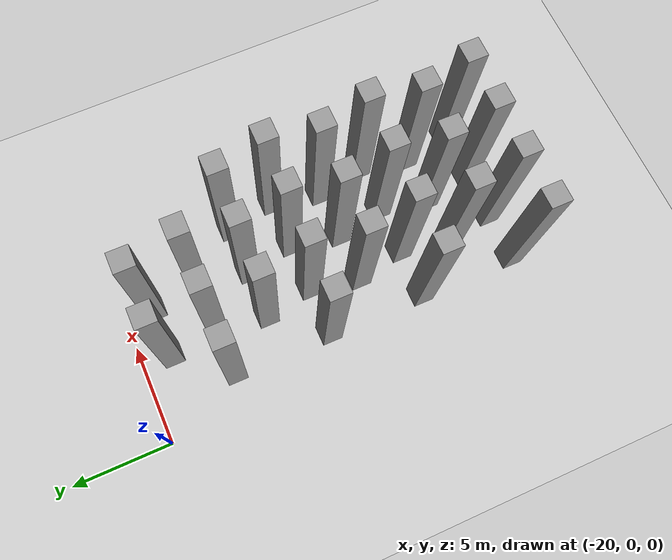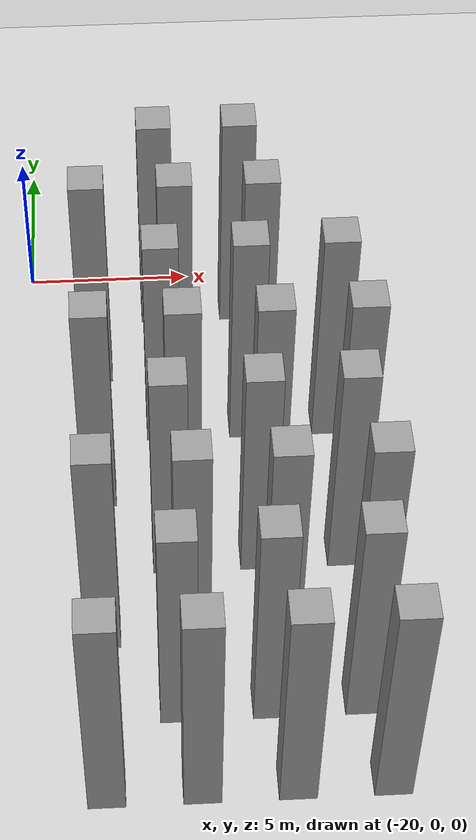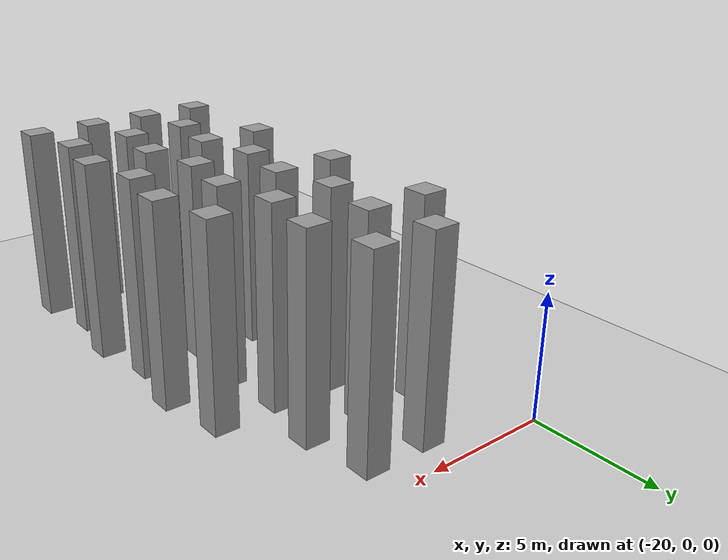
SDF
<sdf version="1.7">
 <world name="default">
  <model name="ground_plane">
   <static>1</static>
   <link name="link">
    <collision name="collision">
     <geometry><plane><normal>0 0 1</normal><size>100 100</size></plane></geometry>
     <surface>
      <contact><collide_bitmask>65535</collide_bitmask></contact>
      <friction><ode><mu>100</mu><mu2>50</mu2></ode></friction>
     </surface>
    </collision>
    <visual name="visual">
     <cast_shadows>0</cast_shadows>
     <geometry><plane><normal>0 0 1</normal><size>100 100</size></plane></geometry>
     <material>
      <script><uri>file://media/materials/scripts/gazebo.material</uri><name>Gazebo/Grey</name></script>
     </material>
    </visual>
   </link>
  </model>
  <model name="unit_box_static1">
   <link name="link">
    <inertial>
     <mass>1</mass>
     <inertia>
      <ixx>0.166667</ixx>
      <ixy>0</ixy>
      <ixz>0</ixz>
      <iyy>0.166667</iyy>
      <iyz>0</iyz>
      <izz>0.166667</izz>
     </inertia>
    </inertial>
    <visual name="visual">
     <geometry><box><size>1 1 8</size></box></geometry>
     <material>
      <script><name>Gazebo/Grey</name><uri>file://media/materials/scripts/gazebo.material</uri></script>
      <shader type="pixel"/>
     </material>
    </visual>
    <collision name="collision">
     <geometry><box><size>1 1 8</size></box></geometry>
     <surface>
      <friction>
       <ode><mu>1</mu><mu2>1</mu2><fdir1>0 0 0</fdir1><slip1>0</slip1><slip2>0</slip2></ode>
       <torsional>
        <coefficient>1</coefficient>
        <patch_radius>0</patch_radius>
        <surface_radius>0</surface_radius>
        <use_patch_radius>1</use_patch_radius>
        <ode><slip>0</slip></ode>
       </torsional>
      </friction>
      <bounce><restitution_coefficient>0</restitution_coefficient><threshold>1e+06</threshold></bounce>
      <contact>
       <collide_without_contact>0</collide_without_contact>
       <collide_without_contact_bitmask>1</collide_without_contact_bitmask>
       <collide_bitmask>1</collide_bitmask>
       <ode>
        <soft_cfm>0</soft_cfm>
        <soft_erp>0.2</soft_erp>
        <kp>1e+13</kp>
        <kd>1</kd>
        <max_vel>0.01</max_vel>
        <min_depth>0</min_depth>
       </ode>
       <bullet>
        <split_impulse>1</split_impulse>
        <split_impulse_penetration_threshold>-0.01</split_impulse_penetration_threshold>
        <soft_cfm>0</soft_cfm>
        <soft_erp>0.2</soft_erp>
        <kp>1e+13</kp>
        <kd>1</kd>
       </bullet>
      </contact>
     </surface>
    </collision>
   </link>
   <static>1</static>
   <pose>-18 -19 4 0 -0 0</pose>
  </model>
  <model name="unit_box_static2">
   <link name="link">
    <inertial>
     <mass>1</mass>
     <inertia>
      <ixx>0.166667</ixx>
      <ixy>0</ixy>
      <ixz>0</ixz>
      <iyy>0.166667</iyy>
      <iyz>0</iyz>
      <izz>0.166667</izz>
     </inertia>
    </inertial>
    <visual name="visual">
     <geometry><box><size>1 1 8</size></box></geometry>
     <material>
      <script><name>Gazebo/Grey</name><uri>file://media/materials/scripts/gazebo.material</uri></script>
      <shader type="pixel"/>
     </material>
    </visual>
    <collision name="collision">
     <geometry><box><size>1 1 8</size></box></geometry>
     <surface>
      <friction>
       <ode><mu>1</mu><mu2>1</mu2><fdir1>0 0 0</fdir1><slip1>0</slip1><slip2>0</slip2></ode>
       <torsional>
        <coefficient>1</coefficient>
        <patch_radius>0</patch_radius>
        <surface_radius>0</surface_radius>
        <use_patch_radius>1</use_patch_radius>
        <ode><slip>0</slip></ode>
       </torsional>
      </friction>
      <bounce><restitution_coefficient>0</restitution_coefficient><threshold>1e+06</threshold></bounce>
      <contact>
       <collide_without_contact>0</collide_without_contact>
       <collide_without_contact_bitmask>1</collide_without_contact_bitmask>
       <collide_bitmask>1</collide_bitmask>
       <ode>
        <soft_cfm>0</soft_cfm>
        <soft_erp>0.2</soft_erp>
        <kp>1e+13</kp>
        <kd>1</kd>
        <max_vel>0.01</max_vel>
        <min_depth>0</min_depth>
       </ode>
       <bullet>
        <split_impulse>1</split_impulse>
        <split_impulse_penetration_threshold>-0.01</split_impulse_penetration_threshold>
        <soft_cfm>0</soft_cfm>
        <soft_erp>0.2</soft_erp>
        <kp>1e+13</kp>
        <kd>1</kd>
       </bullet>
      </contact>
     </surface>
    </collision>
   </link>
   <static>1</static>
   <pose>-15.5 -19 4 0 -0 0</pose>
  </model>
  <model name="unit_box_static3">
   <link name="link">
    <inertial>
     <mass>1</mass>
     <inertia>
      <ixx>0.166667</ixx>
      <ixy>0</ixy>
      <ixz>0</ixz>
      <iyy>0.166667</iyy>
      <iyz>0</iyz>
      <izz>0.166667</izz>
     </inertia>
    </inertial>
    <visual name="visual">
     <geometry><box><size>1 1 8</size></box></geometry>
     <material>
      <script><name>Gazebo/Grey</name><uri>file://media/materials/scripts/gazebo.material</uri></script>
      <shader type="pixel"/>
     </material>
    </visual>
    <collision name="collision">
     <geometry><box><size>1 1 8</size></box></geometry>
     <surface>
      <friction>
       <ode><mu>1</mu><mu2>1</mu2><fdir1>0 0 0</fdir1><slip1>0</slip1><slip2>0</slip2></ode>
       <torsional>
        <coefficient>1</coefficient>
        <patch_radius>0</patch_radius>
        <surface_radius>0</surface_radius>
        <use_patch_radius>1</use_patch_radius>
        <ode><slip>0</slip></ode>
       </torsional>
      </friction>
      <bounce><restitution_coefficient>0</restitution_coefficient><threshold>1e+06</threshold></bounce>
      <contact>
       <collide_without_contact>0</collide_without_contact>
       <collide_without_contact_bitmask>1</collide_without_contact_bitmask>
       <collide_bitmask>1</collide_bitmask>
       <ode>
        <soft_cfm>0</soft_cfm>
        <soft_erp>0.2</soft_erp>
        <kp>1e+13</kp>
        <kd>1</kd>
        <max_vel>0.01</max_vel>
        <min_depth>0</min_depth>
       </ode>
       <bullet>
        <split_impulse>1</split_impulse>
        <split_impulse_penetration_threshold>-0.01</split_impulse_penetration_threshold>
        <soft_cfm>0</soft_cfm>
        <soft_erp>0.2</soft_erp>
        <kp>1e+13</kp>
        <kd>1</kd>
       </bullet>
      </contact>
     </surface>
    </collision>
   </link>
   <static>1</static>
   <pose>-13 -19 4 0 -0 0</pose>
  </model>
  <model name="unit_box_static4">
   <link name="link">
    <inertial>
     <mass>1</mass>
     <inertia>
      <ixx>0.166667</ixx>
      <ixy>0</ixy>
      <ixz>0</ixz>
      <iyy>0.166667</iyy>
      <iyz>0</iyz>
      <izz>0.166667</izz>
     </inertia>
    </inertial>
    <visual name="visual">
     <geometry><box><size>1 1 8</size></box></geometry>
     <material>
      <script><name>Gazebo/Grey</name><uri>file://media/materials/scripts/gazebo.material</uri></script>
      <shader type="pixel"/>
     </material>
    </visual>
    <collision name="collision">
     <geometry><box><size>1 1 8</size></box></geometry>
     <surface>
      <friction>
       <ode><mu>1</mu><mu2>1</mu2><fdir1>0 0 0</fdir1><slip1>0</slip1><slip2>0</slip2></ode>
       <torsional>
        <coefficient>1</coefficient>
        <patch_radius>0</patch_radius>
        <surface_radius>0</surface_radius>
        <use_patch_radius>1</use_patch_radius>
        <ode><slip>0</slip></ode>
       </torsional>
      </friction>
      <bounce><restitution_coefficient>0</restitution_coefficient><threshold>1e+06</threshold></bounce>
      <contact>
       <collide_without_contact>0</collide_without_contact>
       <collide_without_contact_bitmask>1</collide_without_contact_bitmask>
       <collide_bitmask>1</collide_bitmask>
       <ode>
        <soft_cfm>0</soft_cfm>
        <soft_erp>0.2</soft_erp>
        <kp>1e+13</kp>
        <kd>1</kd>
        <max_vel>0.01</max_vel>
        <min_depth>0</min_depth>
       </ode>
       <bullet>
        <split_impulse>1</split_impulse>
        <split_impulse_penetration_threshold>-0.01</split_impulse_penetration_threshold>
        <soft_cfm>0</soft_cfm>
        <soft_erp>0.2</soft_erp>
        <kp>1e+13</kp>
        <kd>1</kd>
       </bullet>
      </contact>
     </surface>
    </collision>
   </link>
   <static>1</static>
   <pose>-10.5 -19 4 0 -0 0</pose>
  </model>
  <model name="unit_box_static16">
   <link name="link">
    <inertial>
     <mass>1</mass>
     <inertia>
      <ixx>0.166667</ixx>
      <ixy>0</ixy>
      <ixz>0</ixz>
      <iyy>0.166667</iyy>
      <iyz>0</iyz>
      <izz>0.166667</izz>
     </inertia>
    </inertial>
    <visual name="visual">
     <geometry><box><size>1 1 8</size></box></geometry>
     <material>
      <script><name>Gazebo/Grey</name><uri>file://media/materials/scripts/gazebo.material</uri></script>
      <shader type="pixel"/>
     </material>
    </visual>
    <collision name="collision">
     <geometry><box><size>1 1 8</size></box></geometry>
     <surface>
      <friction>
       <ode><mu>1</mu><mu2>1</mu2><fdir1>0 0 0</fdir1><slip1>0</slip1><slip2>0</slip2></ode>
       <torsional>
        <coefficient>1</coefficient>
        <patch_radius>0</patch_radius>
        <surface_radius>0</surface_radius>
        <use_patch_radius>1</use_patch_radius>
        <ode><slip>0</slip></ode>
       </torsional>
      </friction>
      <bounce><restitution_coefficient>0</restitution_coefficient><threshold>1e+06</threshold></bounce>
      <contact>
       <collide_without_contact>0</collide_without_contact>
       <collide_without_contact_bitmask>1</collide_without_contact_bitmask>
       <collide_bitmask>1</collide_bitmask>
       <ode>
        <soft_cfm>0</soft_cfm>
        <soft_erp>0.2</soft_erp>
        <kp>1e+13</kp>
        <kd>1</kd>
        <max_vel>0.01</max_vel>
        <min_depth>0</min_depth>
       </ode>
       <bullet>
        <split_impulse>1</split_impulse>
        <split_impulse_penetration_threshold>-0.01</split_impulse_penetration_threshold>
        <soft_cfm>0</soft_cfm>
        <soft_erp>0.2</soft_erp>
        <kp>1e+13</kp>
        <kd>1</kd>
       </bullet>
      </contact>
     </surface>
    </collision>
   </link>
   <static>1</static>
   <pose>-16 -16.5 4 0 -0 0</pose>
  </model>
  <model name="unit_box_static17">
   <link name="link">
    <inertial>
     <mass>1</mass>
     <inertia>
      <ixx>0.166667</ixx>
      <ixy>0</ixy>
      <ixz>0</ixz>
      <iyy>0.166667</iyy>
      <iyz>0</iyz>
      <izz>0.166667</izz>
     </inertia>
    </inertial>
    <visual name="visual">
     <geometry><box><size>1 1 8</size></box></geometry>
     <material>
      <script><name>Gazebo/Grey</name><uri>file://media/materials/scripts/gazebo.material</uri></script>
      <shader type="pixel"/>
     </material>
    </visual>
    <collision name="collision">
     <geometry><box><size>1 1 8</size></box></geometry>
     <surface>
      <friction>
       <ode><mu>1</mu><mu2>1</mu2><fdir1>0 0 0</fdir1><slip1>0</slip1><slip2>0</slip2></ode>
       <torsional>
        <coefficient>1</coefficient>
        <patch_radius>0</patch_radius>
        <surface_radius>0</surface_radius>
        <use_patch_radius>1</use_patch_radius>
        <ode><slip>0</slip></ode>
       </torsional>
      </friction>
      <bounce><restitution_coefficient>0</restitution_coefficient><threshold>1e+06</threshold></bounce>
      <contact>
       <collide_without_contact>0</collide_without_contact>
       <collide_without_contact_bitmask>1</collide_without_contact_bitmask>
       <collide_bitmask>1</collide_bitmask>
       <ode>
        <soft_cfm>0</soft_cfm>
        <soft_erp>0.2</soft_erp>
        <kp>1e+13</kp>
        <kd>1</kd>
        <max_vel>0.01</max_vel>
        <min_depth>0</min_depth>
       </ode>
       <bullet>
        <split_impulse>1</split_impulse>
        <split_impulse_penetration_threshold>-0.01</split_impulse_penetration_threshold>
        <soft_cfm>0</soft_cfm>
        <soft_erp>0.2</soft_erp>
        <kp>1e+13</kp>
        <kd>1</kd>
       </bullet>
      </contact>
     </surface>
    </collision>
   </link>
   <static>1</static>
   <pose>-13.5 -16.5 4 0 -0 0</pose>
  </model>
  <model name="unit_box_static18">
   <link name="link">
    <inertial>
     <mass>1</mass>
     <inertia>
      <ixx>0.166667</ixx>
      <ixy>0</ixy>
      <ixz>0</ixz>
      <iyy>0.166667</iyy>
      <iyz>0</iyz>
      <izz>0.166667</izz>
     </inertia>
    </inertial>
    <visual name="visual">
     <geometry><box><size>1 1 8</size></box></geometry>
     <material>
      <script><name>Gazebo/Grey</name><uri>file://media/materials/scripts/gazebo.material</uri></script>
      <shader type="pixel"/>
     </material>
    </visual>
    <collision name="collision">
     <geometry><box><size>1 1 8</size></box></geometry>
     <surface>
      <friction>
       <ode><mu>1</mu><mu2>1</mu2><fdir1>0 0 0</fdir1><slip1>0</slip1><slip2>0</slip2></ode>
       <torsional>
        <coefficient>1</coefficient>
        <patch_radius>0</patch_radius>
        <surface_radius>0</surface_radius>
        <use_patch_radius>1</use_patch_radius>
        <ode><slip>0</slip></ode>
       </torsional>
      </friction>
      <bounce><restitution_coefficient>0</restitution_coefficient><threshold>1e+06</threshold></bounce>
      <contact>
       <collide_without_contact>0</collide_without_contact>
       <collide_without_contact_bitmask>1</collide_without_contact_bitmask>
       <collide_bitmask>1</collide_bitmask>
       <ode>
        <soft_cfm>0</soft_cfm>
        <soft_erp>0.2</soft_erp>
        <kp>1e+13</kp>
        <kd>1</kd>
        <max_vel>0.01</max_vel>
        <min_depth>0</min_depth>
       </ode>
       <bullet>
        <split_impulse>1</split_impulse>
        <split_impulse_penetration_threshold>-0.01</split_impulse_penetration_threshold>
        <soft_cfm>0</soft_cfm>
        <soft_erp>0.2</soft_erp>
        <kp>1e+13</kp>
        <kd>1</kd>
       </bullet>
      </contact>
     </surface>
    </collision>
   </link>
   <static>1</static>
   <pose>-11 -16.5 4 0 -0 0</pose>
  </model>
  <model name="unit_box_static30">
   <link name="link">
    <inertial>
     <mass>1</mass>
     <inertia>
      <ixx>0.166667</ixx>
      <ixy>0</ixy>
      <ixz>0</ixz>
      <iyy>0.166667</iyy>
      <iyz>0</iyz>
      <izz>0.166667</izz>
     </inertia>
    </inertial>
    <visual name="visual">
     <geometry><box><size>1 1 8</size></box></geometry>
     <material>
      <script><name>Gazebo/Grey</name><uri>file://media/materials/scripts/gazebo.material</uri></script>
      <shader type="pixel"/>
     </material>
    </visual>
    <collision name="collision">
     <geometry><box><size>1 1 8</size></box></geometry>
     <surface>
      <friction>
       <ode><mu>1</mu><mu2>1</mu2><fdir1>0 0 0</fdir1><slip1>0</slip1><slip2>0</slip2></ode>
       <torsional>
        <coefficient>1</coefficient>
        <patch_radius>0</patch_radius>
        <surface_radius>0</surface_radius>
        <use_patch_radius>1</use_patch_radius>
        <ode><slip>0</slip></ode>
       </torsional>
      </friction>
      <bounce><restitution_coefficient>0</restitution_coefficient><threshold>1e+06</threshold></bounce>
      <contact>
       <collide_without_contact>0</collide_without_contact>
       <collide_without_contact_bitmask>1</collide_without_contact_bitmask>
       <collide_bitmask>1</collide_bitmask>
       <ode>
        <soft_cfm>0</soft_cfm>
        <soft_erp>0.2</soft_erp>
        <kp>1e+13</kp>
        <kd>1</kd>
        <max_vel>0.01</max_vel>
        <min_depth>0</min_depth>
       </ode>
       <bullet>
        <split_impulse>1</split_impulse>
        <split_impulse_penetration_threshold>-0.01</split_impulse_penetration_threshold>
        <soft_cfm>0</soft_cfm>
        <soft_erp>0.2</soft_erp>
        <kp>1e+13</kp>
        <kd>1</kd>
       </bullet>
      </contact>
     </surface>
    </collision>
   </link>
   <static>1</static>
   <pose>-18 -14 4 0 -0 0</pose>
  </model>
  <model name="unit_box_static31">
   <link name="link">
    <inertial>
     <mass>1</mass>
     <inertia>
      <ixx>0.166667</ixx>
      <ixy>0</ixy>
      <ixz>0</ixz>
      <iyy>0.166667</iyy>
      <iyz>0</iyz>
      <izz>0.166667</izz>
     </inertia>
    </inertial>
    <visual name="visual">
     <geometry><box><size>1 1 8</size></box></geometry>
     <material>
      <script><name>Gazebo/Grey</name><uri>file://media/materials/scripts/gazebo.material</uri></script>
      <shader type="pixel"/>
     </material>
    </visual>
    <collision name="collision">
     <geometry><box><size>1 1 8</size></box></geometry>
     <surface>
      <friction>
       <ode><mu>1</mu><mu2>1</mu2><fdir1>0 0 0</fdir1><slip1>0</slip1><slip2>0</slip2></ode>
       <torsional>
        <coefficient>1</coefficient>
        <patch_radius>0</patch_radius>
        <surface_radius>0</surface_radius>
        <use_patch_radius>1</use_patch_radius>
        <ode><slip>0</slip></ode>
       </torsional>
      </friction>
      <bounce><restitution_coefficient>0</restitution_coefficient><threshold>1e+06</threshold></bounce>
      <contact>
       <collide_without_contact>0</collide_without_contact>
       <collide_without_contact_bitmask>1</collide_without_contact_bitmask>
       <collide_bitmask>1</collide_bitmask>
       <ode>
        <soft_cfm>0</soft_cfm>
        <soft_erp>0.2</soft_erp>
        <kp>1e+13</kp>
        <kd>1</kd>
        <max_vel>0.01</max_vel>
        <min_depth>0</min_depth>
       </ode>
       <bullet>
        <split_impulse>1</split_impulse>
        <split_impulse_penetration_threshold>-0.01</split_impulse_penetration_threshold>
        <soft_cfm>0</soft_cfm>
        <soft_erp>0.2</soft_erp>
        <kp>1e+13</kp>
        <kd>1</kd>
       </bullet>
      </contact>
     </surface>
    </collision>
   </link>
   <static>1</static>
   <pose>-15.5 -14 4 0 -0 0</pose>
  </model>
  <model name="unit_box_static32">
   <link name="link">
    <inertial>
     <mass>1</mass>
     <inertia>
      <ixx>0.166667</ixx>
      <ixy>0</ixy>
      <ixz>0</ixz>
      <iyy>0.166667</iyy>
      <iyz>0</iyz>
      <izz>0.166667</izz>
     </inertia>
    </inertial>
    <visual name="visual">
     <geometry><box><size>1 1 8</size></box></geometry>
     <material>
      <script><name>Gazebo/Grey</name><uri>file://media/materials/scripts/gazebo.material</uri></script>
      <shader type="pixel"/>
     </material>
    </visual>
    <collision name="collision">
     <geometry><box><size>1 1 8</size></box></geometry>
     <surface>
      <friction>
       <ode><mu>1</mu><mu2>1</mu2><fdir1>0 0 0</fdir1><slip1>0</slip1><slip2>0</slip2></ode>
       <torsional>
        <coefficient>1</coefficient>
        <patch_radius>0</patch_radius>
        <surface_radius>0</surface_radius>
        <use_patch_radius>1</use_patch_radius>
        <ode><slip>0</slip></ode>
       </torsional>
      </friction>
      <bounce><restitution_coefficient>0</restitution_coefficient><threshold>1e+06</threshold></bounce>
      <contact>
       <collide_without_contact>0</collide_without_contact>
       <collide_without_contact_bitmask>1</collide_without_contact_bitmask>
       <collide_bitmask>1</collide_bitmask>
       <ode>
        <soft_cfm>0</soft_cfm>
        <soft_erp>0.2</soft_erp>
        <kp>1e+13</kp>
        <kd>1</kd>
        <max_vel>0.01</max_vel>
        <min_depth>0</min_depth>
       </ode>
       <bullet>
        <split_impulse>1</split_impulse>
        <split_impulse_penetration_threshold>-0.01</split_impulse_penetration_threshold>
        <soft_cfm>0</soft_cfm>
        <soft_erp>0.2</soft_erp>
        <kp>1e+13</kp>
        <kd>1</kd>
       </bullet>
      </contact>
     </surface>
    </collision>
   </link>
   <static>1</static>
   <pose>-13 -14 4 0 -0 0</pose>
  </model>
  <model name="unit_box_static33">
   <link name="link">
    <inertial>
     <mass>1</mass>
     <inertia>
      <ixx>0.166667</ixx>
      <ixy>0</ixy>
      <ixz>0</ixz>
      <iyy>0.166667</iyy>
      <iyz>0</iyz>
      <izz>0.166667</izz>
     </inertia>
    </inertial>
    <visual name="visual">
     <geometry><box><size>1 1 8</size></box></geometry>
     <material>
      <script><name>Gazebo/Grey</name><uri>file://media/materials/scripts/gazebo.material</uri></script>
      <shader type="pixel"/>
     </material>
    </visual>
    <collision name="collision">
     <geometry><box><size>1 1 8</size></box></geometry>
     <surface>
      <friction>
       <ode><mu>1</mu><mu2>1</mu2><fdir1>0 0 0</fdir1><slip1>0</slip1><slip2>0</slip2></ode>
       <torsional>
        <coefficient>1</coefficient>
        <patch_radius>0</patch_radius>
        <surface_radius>0</surface_radius>
        <use_patch_radius>1</use_patch_radius>
        <ode><slip>0</slip></ode>
       </torsional>
      </friction>
      <bounce><restitution_coefficient>0</restitution_coefficient><threshold>1e+06</threshold></bounce>
      <contact>
       <collide_without_contact>0</collide_without_contact>
       <collide_without_contact_bitmask>1</collide_without_contact_bitmask>
       <collide_bitmask>1</collide_bitmask>
       <ode>
        <soft_cfm>0</soft_cfm>
        <soft_erp>0.2</soft_erp>
        <kp>1e+13</kp>
        <kd>1</kd>
        <max_vel>0.01</max_vel>
        <min_depth>0</min_depth>
       </ode>
       <bullet>
        <split_impulse>1</split_impulse>
        <split_impulse_penetration_threshold>-0.01</split_impulse_penetration_threshold>
        <soft_cfm>0</soft_cfm>
        <soft_erp>0.2</soft_erp>
        <kp>1e+13</kp>
        <kd>1</kd>
       </bullet>
      </contact>
     </surface>
    </collision>
   </link>
   <static>1</static>
   <pose>-10.5 -14 4 0 -0 0</pose>
  </model>
  <model name="unit_box_static45">
   <link name="link">
    <inertial>
     <mass>1</mass>
     <inertia>
      <ixx>0.166667</ixx>
      <ixy>0</ixy>
      <ixz>0</ixz>
      <iyy>0.166667</iyy>
      <iyz>0</iyz>
      <izz>0.166667</izz>
     </inertia>
    </inertial>
    <visual name="visual">
     <geometry><box><size>1 1 8</size></box></geometry>
     <material>
      <script><name>Gazebo/Grey</name><uri>file://media/materials/scripts/gazebo.material</uri></script>
      <shader type="pixel"/>
     </material>
    </visual>
    <collision name="collision">
     <geometry><box><size>1 1 8</size></box></geometry>
     <surface>
      <friction>
       <ode><mu>1</mu><mu2>1</mu2><fdir1>0 0 0</fdir1><slip1>0</slip1><slip2>0</slip2></ode>
       <torsional>
        <coefficient>1</coefficient>
        <patch_radius>0</patch_radius>
        <surface_radius>0</surface_radius>
        <use_patch_radius>1</use_patch_radius>
        <ode><slip>0</slip></ode>
       </torsional>
      </friction>
      <bounce><restitution_coefficient>0</restitution_coefficient><threshold>1e+06</threshold></bounce>
      <contact>
       <collide_without_contact>0</collide_without_contact>
       <collide_without_contact_bitmask>1</collide_without_contact_bitmask>
       <collide_bitmask>1</collide_bitmask>
       <ode>
        <soft_cfm>0</soft_cfm>
        <soft_erp>0.2</soft_erp>
        <kp>1e+13</kp>
        <kd>1</kd>
        <max_vel>0.01</max_vel>
        <min_depth>0</min_depth>
       </ode>
       <bullet>
        <split_impulse>1</split_impulse>
        <split_impulse_penetration_threshold>-0.01</split_impulse_penetration_threshold>
        <soft_cfm>0</soft_cfm>
        <soft_erp>0.2</soft_erp>
        <kp>1e+13</kp>
        <kd>1</kd>
       </bullet>
      </contact>
     </surface>
    </collision>
   </link>
   <static>1</static>
   <pose>-16 -11.5 4 0 -0 0</pose>
  </model>
  <model name="unit_box_static46">
   <link name="link">
    <inertial>
     <mass>1</mass>
     <inertia>
      <ixx>0.166667</ixx>
      <ixy>0</ixy>
      <ixz>0</ixz>
      <iyy>0.166667</iyy>
      <iyz>0</iyz>
      <izz>0.166667</izz>
     </inertia>
    </inertial>
    <visual name="visual">
     <geometry><box><size>1 1 8</size></box></geometry>
     <material>
      <script><name>Gazebo/Grey</name><uri>file://media/materials/scripts/gazebo.material</uri></script>
      <shader type="pixel"/>
     </material>
    </visual>
    <collision name="collision">
     <geometry><box><size>1 1 8</size></box></geometry>
     <surface>
      <friction>
       <ode><mu>1</mu><mu2>1</mu2><fdir1>0 0 0</fdir1><slip1>0</slip1><slip2>0</slip2></ode>
       <torsional>
        <coefficient>1</coefficient>
        <patch_radius>0</patch_radius>
        <surface_radius>0</surface_radius>
        <use_patch_radius>1</use_patch_radius>
        <ode><slip>0</slip></ode>
       </torsional>
      </friction>
      <bounce><restitution_coefficient>0</restitution_coefficient><threshold>1e+06</threshold></bounce>
      <contact>
       <collide_without_contact>0</collide_without_contact>
       <collide_without_contact_bitmask>1</collide_without_contact_bitmask>
       <collide_bitmask>1</collide_bitmask>
       <ode>
        <soft_cfm>0</soft_cfm>
        <soft_erp>0.2</soft_erp>
        <kp>1e+13</kp>
        <kd>1</kd>
        <max_vel>0.01</max_vel>
        <min_depth>0</min_depth>
       </ode>
       <bullet>
        <split_impulse>1</split_impulse>
        <split_impulse_penetration_threshold>-0.01</split_impulse_penetration_threshold>
        <soft_cfm>0</soft_cfm>
        <soft_erp>0.2</soft_erp>
        <kp>1e+13</kp>
        <kd>1</kd>
       </bullet>
      </contact>
     </surface>
    </collision>
   </link>
   <static>1</static>
   <pose>-13.5 -11.5 4 0 -0 0</pose>
  </model>
  <model name="unit_box_static47">
   <link name="link">
    <inertial>
     <mass>1</mass>
     <inertia>
      <ixx>0.166667</ixx>
      <ixy>0</ixy>
      <ixz>0</ixz>
      <iyy>0.166667</iyy>
      <iyz>0</iyz>
      <izz>0.166667</izz>
     </inertia>
    </inertial>
    <visual name="visual">
     <geometry><box><size>1 1 8</size></box></geometry>
     <material>
      <script><name>Gazebo/Grey</name><uri>file://media/materials/scripts/gazebo.material</uri></script>
      <shader type="pixel"/>
     </material>
    </visual>
    <collision name="collision">
     <geometry><box><size>1 1 8</size></box></geometry>
     <surface>
      <friction>
       <ode><mu>1</mu><mu2>1</mu2><fdir1>0 0 0</fdir1><slip1>0</slip1><slip2>0</slip2></ode>
       <torsional>
        <coefficient>1</coefficient>
        <patch_radius>0</patch_radius>
        <surface_radius>0</surface_radius>
        <use_patch_radius>1</use_patch_radius>
        <ode><slip>0</slip></ode>
       </torsional>
      </friction>
      <bounce><restitution_coefficient>0</restitution_coefficient><threshold>1e+06</threshold></bounce>
      <contact>
       <collide_without_contact>0</collide_without_contact>
       <collide_without_contact_bitmask>1</collide_without_contact_bitmask>
       <collide_bitmask>1</collide_bitmask>
       <ode>
        <soft_cfm>0</soft_cfm>
        <soft_erp>0.2</soft_erp>
        <kp>1e+13</kp>
        <kd>1</kd>
        <max_vel>0.01</max_vel>
        <min_depth>0</min_depth>
       </ode>
       <bullet>
        <split_impulse>1</split_impulse>
        <split_impulse_penetration_threshold>-0.01</split_impulse_penetration_threshold>
        <soft_cfm>0</soft_cfm>
        <soft_erp>0.2</soft_erp>
        <kp>1e+13</kp>
        <kd>1</kd>
       </bullet>
      </contact>
     </surface>
    </collision>
   </link>
   <static>1</static>
   <pose>-11 -11.5 4 0 -0 0</pose>
  </model>
  <model name="unit_box_static59">
   <link name="link">
    <inertial>
     <mass>1</mass>
     <inertia>
      <ixx>0.166667</ixx>
      <ixy>0</ixy>
      <ixz>0</ixz>
      <iyy>0.166667</iyy>
      <iyz>0</iyz>
      <izz>0.166667</izz>
     </inertia>
    </inertial>
    <visual name="visual">
     <geometry><box><size>1 1 8</size></box></geometry>
     <material>
      <script><name>Gazebo/Grey</name><uri>file://media/materials/scripts/gazebo.material</uri></script>
      <shader type="pixel"/>
     </material>
    </visual>
    <collision name="collision">
     <geometry><box><size>1 1 8</size></box></geometry>
     <surface>
      <friction>
       <ode><mu>1</mu><mu2>1</mu2><fdir1>0 0 0</fdir1><slip1>0</slip1><slip2>0</slip2></ode>
       <torsional>
        <coefficient>1</coefficient>
        <patch_radius>0</patch_radius>
        <surface_radius>0</surface_radius>
        <use_patch_radius>1</use_patch_radius>
        <ode><slip>0</slip></ode>
       </torsional>
      </friction>
      <bounce><restitution_coefficient>0</restitution_coefficient><threshold>1e+06</threshold></bounce>
      <contact>
       <collide_without_contact>0</collide_without_contact>
       <collide_without_contact_bitmask>1</collide_without_contact_bitmask>
       <collide_bitmask>1</collide_bitmask>
       <ode>
        <soft_cfm>0</soft_cfm>
        <soft_erp>0.2</soft_erp>
        <kp>1e+13</kp>
        <kd>1</kd>
        <max_vel>0.01</max_vel>
        <min_depth>0</min_depth>
       </ode>
       <bullet>
        <split_impulse>1</split_impulse>
        <split_impulse_penetration_threshold>-0.01</split_impulse_penetration_threshold>
        <soft_cfm>0</soft_cfm>
        <soft_erp>0.2</soft_erp>
        <kp>1e+13</kp>
        <kd>1</kd>
       </bullet>
      </contact>
     </surface>
    </collision>
   </link>
   <static>1</static>
   <pose>-18 -9 4 0 -0 0</pose>
  </model>
  <model name="unit_box_static60">
   <link name="link">
    <inertial>
     <mass>1</mass>
     <inertia>
      <ixx>0.166667</ixx>
      <ixy>0</ixy>
      <ixz>0</ixz>
      <iyy>0.166667</iyy>
      <iyz>0</iyz>
      <izz>0.166667</izz>
     </inertia>
    </inertial>
    <visual name="visual">
     <geometry><box><size>1 1 8</size></box></geometry>
     <material>
      <script><name>Gazebo/Grey</name><uri>file://media/materials/scripts/gazebo.material</uri></script>
      <shader type="pixel"/>
     </material>
    </visual>
    <collision name="collision">
     <geometry><box><size>1 1 8</size></box></geometry>
     <surface>
      <friction>
       <ode><mu>1</mu><mu2>1</mu2><fdir1>0 0 0</fdir1><slip1>0</slip1><slip2>0</slip2></ode>
       <torsional>
        <coefficient>1</coefficient>
        <patch_radius>0</patch_radius>
        <surface_radius>0</surface_radius>
        <use_patch_radius>1</use_patch_radius>
        <ode><slip>0</slip></ode>
       </torsional>
      </friction>
      <bounce><restitution_coefficient>0</restitution_coefficient><threshold>1e+06</threshold></bounce>
      <contact>
       <collide_without_contact>0</collide_without_contact>
       <collide_without_contact_bitmask>1</collide_without_contact_bitmask>
       <collide_bitmask>1</collide_bitmask>
       <ode>
        <soft_cfm>0</soft_cfm>
        <soft_erp>0.2</soft_erp>
        <kp>1e+13</kp>
        <kd>1</kd>
        <max_vel>0.01</max_vel>
        <min_depth>0</min_depth>
       </ode>
       <bullet>
        <split_impulse>1</split_impulse>
        <split_impulse_penetration_threshold>-0.01</split_impulse_penetration_threshold>
        <soft_cfm>0</soft_cfm>
        <soft_erp>0.2</soft_erp>
        <kp>1e+13</kp>
        <kd>1</kd>
       </bullet>
      </contact>
     </surface>
    </collision>
   </link>
   <static>1</static>
   <pose>-15.5 -9 4 0 -0 0</pose>
  </model>
  <model name="unit_box_static61">
   <link name="link">
    <inertial>
     <mass>1</mass>
     <inertia>
      <ixx>0.166667</ixx>
      <ixy>0</ixy>
      <ixz>0</ixz>
      <iyy>0.166667</iyy>
      <iyz>0</iyz>
      <izz>0.166667</izz>
     </inertia>
    </inertial>
    <visual name="visual">
     <geometry><box><size>1 1 8</size></box></geometry>
     <material>
      <script><name>Gazebo/Grey</name><uri>file://media/materials/scripts/gazebo.material</uri></script>
      <shader type="pixel"/>
     </material>
    </visual>
    <collision name="collision">
     <geometry><box><size>1 1 8</size></box></geometry>
     <surface>
      <friction>
       <ode><mu>1</mu><mu2>1</mu2><fdir1>0 0 0</fdir1><slip1>0</slip1><slip2>0</slip2></ode>
       <torsional>
        <coefficient>1</coefficient>
        <patch_radius>0</patch_radius>
        <surface_radius>0</surface_radius>
        <use_patch_radius>1</use_patch_radius>
        <ode><slip>0</slip></ode>
       </torsional>
      </friction>
      <bounce><restitution_coefficient>0</restitution_coefficient><threshold>1e+06</threshold></bounce>
      <contact>
       <collide_without_contact>0</collide_without_contact>
       <collide_without_contact_bitmask>1</collide_without_contact_bitmask>
       <collide_bitmask>1</collide_bitmask>
       <ode>
        <soft_cfm>0</soft_cfm>
        <soft_erp>0.2</soft_erp>
        <kp>1e+13</kp>
        <kd>1</kd>
        <max_vel>0.01</max_vel>
        <min_depth>0</min_depth>
       </ode>
       <bullet>
        <split_impulse>1</split_impulse>
        <split_impulse_penetration_threshold>-0.01</split_impulse_penetration_threshold>
        <soft_cfm>0</soft_cfm>
        <soft_erp>0.2</soft_erp>
        <kp>1e+13</kp>
        <kd>1</kd>
       </bullet>
      </contact>
     </surface>
    </collision>
   </link>
   <static>1</static>
   <pose>-13 -9 4 0 -0 0</pose>
  </model>
  <model name="unit_box_static62">
   <link name="link">
    <inertial>
     <mass>1</mass>
     <inertia>
      <ixx>0.166667</ixx>
      <ixy>0</ixy>
      <ixz>0</ixz>
      <iyy>0.166667</iyy>
      <iyz>0</iyz>
      <izz>0.166667</izz>
     </inertia>
    </inertial>
    <visual name="visual">
     <geometry><box><size>1 1 8</size></box></geometry>
     <material>
      <script><name>Gazebo/Grey</name><uri>file://media/materials/scripts/gazebo.material</uri></script>
      <shader type="pixel"/>
     </material>
    </visual>
    <collision name="collision">
     <geometry><box><size>1 1 8</size></box></geometry>
     <surface>
      <friction>
       <ode><mu>1</mu><mu2>1</mu2><fdir1>0 0 0</fdir1><slip1>0</slip1><slip2>0</slip2></ode>
       <torsional>
        <coefficient>1</coefficient>
        <patch_radius>0</patch_radius>
        <surface_radius>0</surface_radius>
        <use_patch_radius>1</use_patch_radius>
        <ode><slip>0</slip></ode>
       </torsional>
      </friction>
      <bounce><restitution_coefficient>0</restitution_coefficient><threshold>1e+06</threshold></bounce>
      <contact>
       <collide_without_contact>0</collide_without_contact>
       <collide_without_contact_bitmask>1</collide_without_contact_bitmask>
       <collide_bitmask>1</collide_bitmask>
       <ode>
        <soft_cfm>0</soft_cfm>
        <soft_erp>0.2</soft_erp>
        <kp>1e+13</kp>
        <kd>1</kd>
        <max_vel>0.01</max_vel>
        <min_depth>0</min_depth>
       </ode>
       <bullet>
        <split_impulse>1</split_impulse>
        <split_impulse_penetration_threshold>-0.01</split_impulse_penetration_threshold>
        <soft_cfm>0</soft_cfm>
        <soft_erp>0.2</soft_erp>
        <kp>1e+13</kp>
        <kd>1</kd>
       </bullet>
      </contact>
     </surface>
    </collision>
   </link>
   <static>1</static>
   <pose>-10.5 -9 4 0 -0 0</pose>
  </model>
  <model name="unit_box_static74">
   <link name="link">
    <inertial>
     <mass>1</mass>
     <inertia>
      <ixx>0.166667</ixx>
      <ixy>0</ixy>
      <ixz>0</ixz>
      <iyy>0.166667</iyy>
      <iyz>0</iyz>
      <izz>0.166667</izz>
     </inertia>
    </inertial>
    <visual name="visual">
     <geometry><box><size>1 1 8</size></box></geometry>
     <material>
      <script><name>Gazebo/Grey</name><uri>file://media/materials/scripts/gazebo.material</uri></script>
      <shader type="pixel"/>
     </material>
    </visual>
    <collision name="collision">
     <geometry><box><size>1 1 8</size></box></geometry>
     <surface>
      <friction>
       <ode><mu>1</mu><mu2>1</mu2><fdir1>0 0 0</fdir1><slip1>0</slip1><slip2>0</slip2></ode>
       <torsional>
        <coefficient>1</coefficient>
        <patch_radius>0</patch_radius>
        <surface_radius>0</surface_radius>
        <use_patch_radius>1</use_patch_radius>
        <ode><slip>0</slip></ode>
       </torsional>
      </friction>
      <bounce><restitution_coefficient>0</restitution_coefficient><threshold>1e+06</threshold></bounce>
      <contact>
       <collide_without_contact>0</collide_without_contact>
       <collide_without_contact_bitmask>1</collide_without_contact_bitmask>
       <collide_bitmask>1</collide_bitmask>
       <ode>
        <soft_cfm>0</soft_cfm>
        <soft_erp>0.2</soft_erp>
        <kp>1e+13</kp>
        <kd>1</kd>
        <max_vel>0.01</max_vel>
        <min_depth>0</min_depth>
       </ode>
       <bullet>
        <split_impulse>1</split_impulse>
        <split_impulse_penetration_threshold>-0.01</split_impulse_penetration_threshold>
        <soft_cfm>0</soft_cfm>
        <soft_erp>0.2</soft_erp>
        <kp>1e+13</kp>
        <kd>1</kd>
       </bullet>
      </contact>
     </surface>
    </collision>
   </link>
   <static>1</static>
   <pose>-16 -6.5 4 0 -0 0</pose>
  </model>
  <model name="unit_box_static75">
   <link name="link">
    <inertial>
     <mass>1</mass>
     <inertia>
      <ixx>0.166667</ixx>
      <ixy>0</ixy>
      <ixz>0</ixz>
      <iyy>0.166667</iyy>
      <iyz>0</iyz>
      <izz>0.166667</izz>
     </inertia>
    </inertial>
    <visual name="visual">
     <geometry><box><size>1 1 8</size></box></geometry>
     <material>
      <script><name>Gazebo/Grey</name><uri>file://media/materials/scripts/gazebo.material</uri></script>
      <shader type="pixel"/>
     </material>
    </visual>
    <collision name="collision">
     <geometry><box><size>1 1 8</size></box></geometry>
     <surface>
      <friction>
       <ode><mu>1</mu><mu2>1</mu2><fdir1>0 0 0</fdir1><slip1>0</slip1><slip2>0</slip2></ode>
       <torsional>
        <coefficient>1</coefficient>
        <patch_radius>0</patch_radius>
        <surface_radius>0</surface_radius>
        <use_patch_radius>1</use_patch_radius>
        <ode><slip>0</slip></ode>
       </torsional>
      </friction>
      <bounce><restitution_coefficient>0</restitution_coefficient><threshold>1e+06</threshold></bounce>
      <contact>
       <collide_without_contact>0</collide_without_contact>
       <collide_without_contact_bitmask>1</collide_without_contact_bitmask>
       <collide_bitmask>1</collide_bitmask>
       <ode>
        <soft_cfm>0</soft_cfm>
        <soft_erp>0.2</soft_erp>
        <kp>1e+13</kp>
        <kd>1</kd>
        <max_vel>0.01</max_vel>
        <min_depth>0</min_depth>
       </ode>
       <bullet>
        <split_impulse>1</split_impulse>
        <split_impulse_penetration_threshold>-0.01</split_impulse_penetration_threshold>
        <soft_cfm>0</soft_cfm>
        <soft_erp>0.2</soft_erp>
        <kp>1e+13</kp>
        <kd>1</kd>
       </bullet>
      </contact>
     </surface>
    </collision>
   </link>
   <static>1</static>
   <pose>-13.5 -6.5 4 0 -0 0</pose>
  </model>
  <model name="unit_box_static76">
   <link name="link">
    <inertial>
     <mass>1</mass>
     <inertia>
      <ixx>0.166667</ixx>
      <ixy>0</ixy>
      <ixz>0</ixz>
      <iyy>0.166667</iyy>
      <iyz>0</iyz>
      <izz>0.166667</izz>
     </inertia>
    </inertial>
    <visual name="visual">
     <geometry><box><size>1 1 8</size></box></geometry>
     <material>
      <script><name>Gazebo/Grey</name><uri>file://media/materials/scripts/gazebo.material</uri></script>
      <shader type="pixel"/>
     </material>
    </visual>
    <collision name="collision">
     <geometry><box><size>1 1 8</size></box></geometry>
     <surface>
      <friction>
       <ode><mu>1</mu><mu2>1</mu2><fdir1>0 0 0</fdir1><slip1>0</slip1><slip2>0</slip2></ode>
       <torsional>
        <coefficient>1</coefficient>
        <patch_radius>0</patch_radius>
        <surface_radius>0</surface_radius>
        <use_patch_radius>1</use_patch_radius>
        <ode><slip>0</slip></ode>
       </torsional>
      </friction>
      <bounce><restitution_coefficient>0</restitution_coefficient><threshold>1e+06</threshold></bounce>
      <contact>
       <collide_without_contact>0</collide_without_contact>
       <collide_without_contact_bitmask>1</collide_without_contact_bitmask>
       <collide_bitmask>1</collide_bitmask>
       <ode>
        <soft_cfm>0</soft_cfm>
        <soft_erp>0.2</soft_erp>
        <kp>1e+13</kp>
        <kd>1</kd>
        <max_vel>0.01</max_vel>
        <min_depth>0</min_depth>
       </ode>
       <bullet>
        <split_impulse>1</split_impulse>
        <split_impulse_penetration_threshold>-0.01</split_impulse_penetration_threshold>
        <soft_cfm>0</soft_cfm>
        <soft_erp>0.2</soft_erp>
        <kp>1e+13</kp>
        <kd>1</kd>
       </bullet>
      </contact>
     </surface>
    </collision>
   </link>
   <static>1</static>
   <pose>-11 -6.5 4 0 -0 0</pose>
  </model>
  <model name="unit_box_static88">
   <link name="link">
    <inertial>
     <mass>1</mass>
     <inertia>
      <ixx>0.166667</ixx>
      <ixy>0</ixy>
      <ixz>0</ixz>
      <iyy>0.166667</iyy>
      <iyz>0</iyz>
      <izz>0.166667</izz>
     </inertia>
    </inertial>
    <visual name="visual">
     <geometry><box><size>1 1 8</size></box></geometry>
     <material>
      <script><name>Gazebo/Grey</name><uri>file://media/materials/scripts/gazebo.material</uri></script>
      <shader type="pixel"/>
     </material>
    </visual>
    <collision name="collision">
     <geometry><box><size>1 1 8</size></box></geometry>
     <surface>
      <friction>
       <ode><mu>1</mu><mu2>1</mu2><fdir1>0 0 0</fdir1><slip1>0</slip1><slip2>0</slip2></ode>
       <torsional>
        <coefficient>1</coefficient>
        <patch_radius>0</patch_radius>
        <surface_radius>0</surface_radius>
        <use_patch_radius>1</use_patch_radius>
        <ode><slip>0</slip></ode>
       </torsional>
      </friction>
      <bounce><restitution_coefficient>0</restitution_coefficient><threshold>1e+06</threshold></bounce>
      <contact>
       <collide_without_contact>0</collide_without_contact>
       <collide_without_contact_bitmask>1</collide_without_contact_bitmask>
       <collide_bitmask>1</collide_bitmask>
       <ode>
        <soft_cfm>0</soft_cfm>
        <soft_erp>0.2</soft_erp>
        <kp>1e+13</kp>
        <kd>1</kd>
        <max_vel>0.01</max_vel>
        <min_depth>0</min_depth>
       </ode>
       <bullet>
        <split_impulse>1</split_impulse>
        <split_impulse_penetration_threshold>-0.01</split_impulse_penetration_threshold>
        <soft_cfm>0</soft_cfm>
        <soft_erp>0.2</soft_erp>
        <kp>1e+13</kp>
        <kd>1</kd>
       </bullet>
      </contact>
     </surface>
    </collision>
   </link>
   <static>1</static>
   <pose>-18 -4 4 0 -0 0</pose>
  </model>
  <model name="unit_box_static89">
   <link name="link">
    <inertial>
     <mass>1</mass>
     <inertia>
      <ixx>0.166667</ixx>
      <ixy>0</ixy>
      <ixz>0</ixz>
      <iyy>0.166667</iyy>
      <iyz>0</iyz>
      <izz>0.166667</izz>
     </inertia>
    </inertial>
    <visual name="visual">
     <geometry><box><size>1 1 8</size></box></geometry>
     <material>
      <script><name>Gazebo/Grey</name><uri>file://media/materials/scripts/gazebo.material</uri></script>
      <shader type="pixel"/>
     </material>
    </visual>
    <collision name="collision">
     <geometry><box><size>1 1 8</size></box></geometry>
     <surface>
      <friction>
       <ode><mu>1</mu><mu2>1</mu2><fdir1>0 0 0</fdir1><slip1>0</slip1><slip2>0</slip2></ode>
       <torsional>
        <coefficient>1</coefficient>
        <patch_radius>0</patch_radius>
        <surface_radius>0</surface_radius>
        <use_patch_radius>1</use_patch_radius>
        <ode><slip>0</slip></ode>
       </torsional>
      </friction>
      <bounce><restitution_coefficient>0</restitution_coefficient><threshold>1e+06</threshold></bounce>
      <contact>
       <collide_without_contact>0</collide_without_contact>
       <collide_without_contact_bitmask>1</collide_without_contact_bitmask>
       <collide_bitmask>1</collide_bitmask>
       <ode>
        <soft_cfm>0</soft_cfm>
        <soft_erp>0.2</soft_erp>
        <kp>1e+13</kp>
        <kd>1</kd>
        <max_vel>0.01</max_vel>
        <min_depth>0</min_depth>
       </ode>
       <bullet>
        <split_impulse>1</split_impulse>
        <split_impulse_penetration_threshold>-0.01</split_impulse_penetration_threshold>
        <soft_cfm>0</soft_cfm>
        <soft_erp>0.2</soft_erp>
        <kp>1e+13</kp>
        <kd>1</kd>
       </bullet>
      </contact>
     </surface>
    </collision>
   </link>
   <static>1</static>
   <pose>-15.5 -4 4 0 -0 0</pose>
  </model>
  <model name="unit_box_static90">
   <link name="link">
    <inertial>
     <mass>1</mass>
     <inertia>
      <ixx>0.166667</ixx>
      <ixy>0</ixy>
      <ixz>0</ixz>
      <iyy>0.166667</iyy>
      <iyz>0</iyz>
      <izz>0.166667</izz>
     </inertia>
    </inertial>
    <visual name="visual">
     <geometry><box><size>1 1 8</size></box></geometry>
     <material>
      <script><name>Gazebo/Grey</name><uri>file://media/materials/scripts/gazebo.material</uri></script>
      <shader type="pixel"/>
     </material>
    </visual>
    <collision name="collision">
     <geometry><box><size>1 1 8</size></box></geometry>
     <surface>
      <friction>
       <ode><mu>1</mu><mu2>1</mu2><fdir1>0 0 0</fdir1><slip1>0</slip1><slip2>0</slip2></ode>
       <torsional>
        <coefficient>1</coefficient>
        <patch_radius>0</patch_radius>
        <surface_radius>0</surface_radius>
        <use_patch_radius>1</use_patch_radius>
        <ode><slip>0</slip></ode>
       </torsional>
      </friction>
      <bounce><restitution_coefficient>0</restitution_coefficient><threshold>1e+06</threshold></bounce>
      <contact>
       <collide_without_contact>0</collide_without_contact>
       <collide_without_contact_bitmask>1</collide_without_contact_bitmask>
       <collide_bitmask>1</collide_bitmask>
       <ode>
        <soft_cfm>0</soft_cfm>
        <soft_erp>0.2</soft_erp>
        <kp>1e+13</kp>
        <kd>1</kd>
        <max_vel>0.01</max_vel>
        <min_depth>0</min_depth>
       </ode>
       <bullet>
        <split_impulse>1</split_impulse>
        <split_impulse_penetration_threshold>-0.01</split_impulse_penetration_threshold>
        <soft_cfm>0</soft_cfm>
        <soft_erp>0.2</soft_erp>
        <kp>1e+13</kp>
        <kd>1</kd>
       </bullet>
      </contact>
     </surface>
    </collision>
   </link>
   <static>1</static>
   <pose>-13 -4 4 0 -0 0</pose>
  </model>
  <model name="unit_box_static103">
   <link name="link">
    <inertial>
     <mass>1</mass>
     <inertia>
      <ixx>0.166667</ixx>
      <ixy>0</ixy>
      <ixz>0</ixz>
      <iyy>0.166667</iyy>
      <iyz>0</iyz>
      <izz>0.166667</izz>
     </inertia>
    </inertial>
    <visual name="visual">
     <geometry><box><size>1 1 8</size></box></geometry>
     <material>
      <script><name>Gazebo/Grey</name><uri>file://media/materials/scripts/gazebo.material</uri></script>
      <shader type="pixel"/>
     </material>
    </visual>
    <collision name="collision">
     <geometry><box><size>1 1 8</size></box></geometry>
     <surface>
      <friction>
       <ode><mu>1</mu><mu2>1</mu2><fdir1>0 0 0</fdir1><slip1>0</slip1><slip2>0</slip2></ode>
       <torsional>
        <coefficient>1</coefficient>
        <patch_radius>0</patch_radius>
        <surface_radius>0</surface_radius>
        <use_patch_radius>1</use_patch_radius>
        <ode><slip>0</slip></ode>
       </torsional>
      </friction>
      <bounce><restitution_coefficient>0</restitution_coefficient><threshold>1e+06</threshold></bounce>
      <contact>
       <collide_without_contact>0</collide_without_contact>
       <collide_without_contact_bitmask>1</collide_without_contact_bitmask>
       <collide_bitmask>1</collide_bitmask>
       <ode>
        <soft_cfm>0</soft_cfm>
        <soft_erp>0.2</soft_erp>
        <kp>1e+13</kp>
        <kd>1</kd>
        <max_vel>0.01</max_vel>
        <min_depth>0</min_depth>
       </ode>
       <bullet>
        <split_impulse>1</split_impulse>
        <split_impulse_penetration_threshold>-0.01</split_impulse_penetration_threshold>
        <soft_cfm>0</soft_cfm>
        <soft_erp>0.2</soft_erp>
        <kp>1e+13</kp>
        <kd>1</kd>
       </bullet>
      </contact>
     </surface>
    </collision>
   </link>
   <static>1</static>
   <pose>-16 -1.5 4 0 -0 0</pose>
  </model>
  <model name="unit_box_static104">
   <link name="link">
    <inertial>
     <mass>1</mass>
     <inertia>
      <ixx>0.166667</ixx>
      <ixy>0</ixy>
      <ixz>0</ixz>
      <iyy>0.166667</iyy>
      <iyz>0</iyz>
      <izz>0.166667</izz>
     </inertia>
    </inertial>
    <visual name="visual">
     <geometry><box><size>1 1 8</size></box></geometry>
     <material>
      <script><name>Gazebo/Grey</name><uri>file://media/materials/scripts/gazebo.material</uri></script>
      <shader type="pixel"/>
     </material>
    </visual>
    <collision name="collision">
     <geometry><box><size>1 1 8</size></box></geometry>
     <surface>
      <friction>
       <ode><mu>1</mu><mu2>1</mu2><fdir1>0 0 0</fdir1><slip1>0</slip1><slip2>0</slip2></ode>
       <torsional>
        <coefficient>1</coefficient>
        <patch_radius>0</patch_radius>
        <surface_radius>0</surface_radius>
        <use_patch_radius>1</use_patch_radius>
        <ode><slip>0</slip></ode>
       </torsional>
      </friction>
      <bounce><restitution_coefficient>0</restitution_coefficient><threshold>1e+06</threshold></bounce>
      <contact>
       <collide_without_contact>0</collide_without_contact>
       <collide_without_contact_bitmask>1</collide_without_contact_bitmask>
       <collide_bitmask>1</collide_bitmask>
       <ode>
        <soft_cfm>0</soft_cfm>
        <soft_erp>0.2</soft_erp>
        <kp>1e+13</kp>
        <kd>1</kd>
        <max_vel>0.01</max_vel>
        <min_depth>0</min_depth>
       </ode>
       <bullet>
        <split_impulse>1</split_impulse>
        <split_impulse_penetration_threshold>-0.01</split_impulse_penetration_threshold>
        <soft_cfm>0</soft_cfm>
        <soft_erp>0.2</soft_erp>
        <kp>1e+13</kp>
        <kd>1</kd>
       </bullet>
      </contact>
     </surface>
    </collision>
   </link>
   <static>1</static>
   <pose>-13.5 -1.5 4 0 -0 0</pose>
  </model>
 </world>
</sdf>
